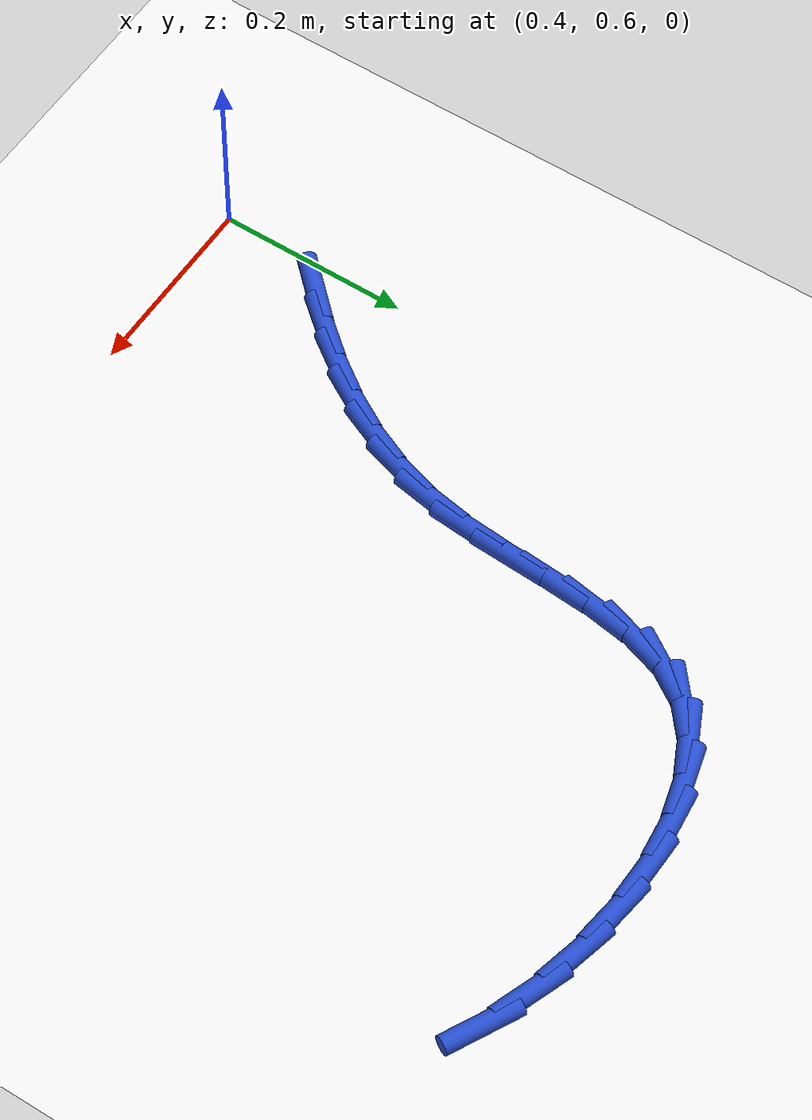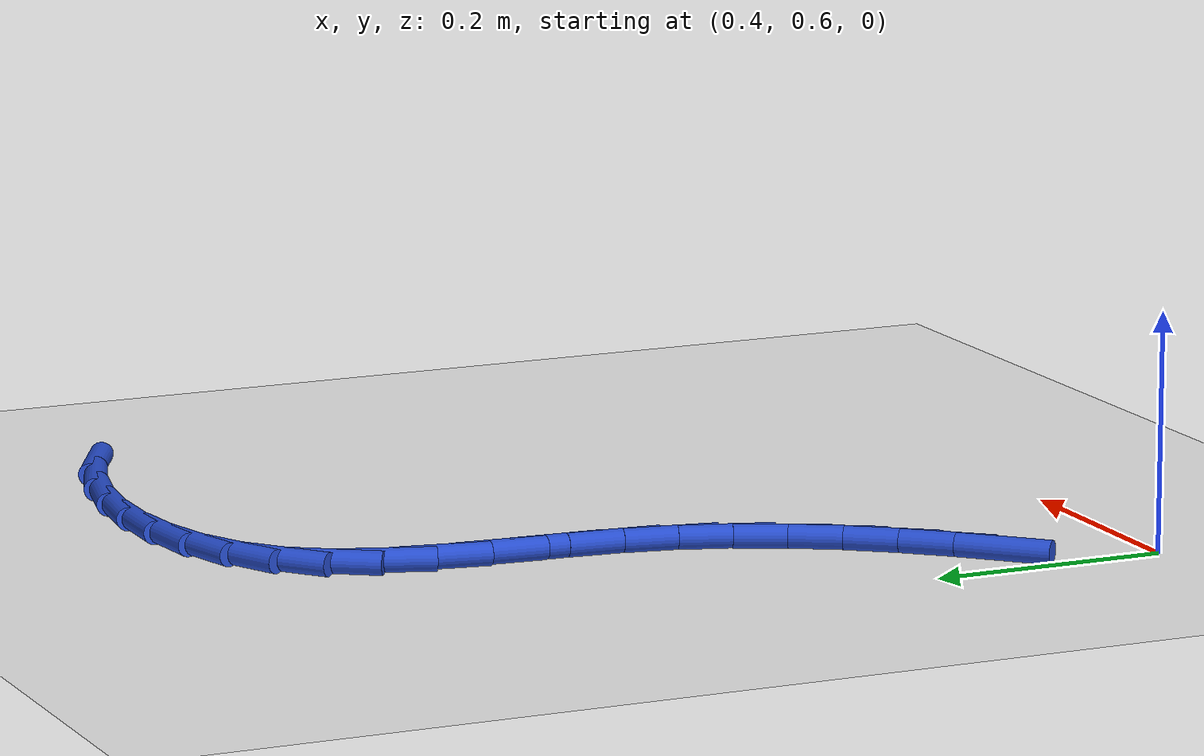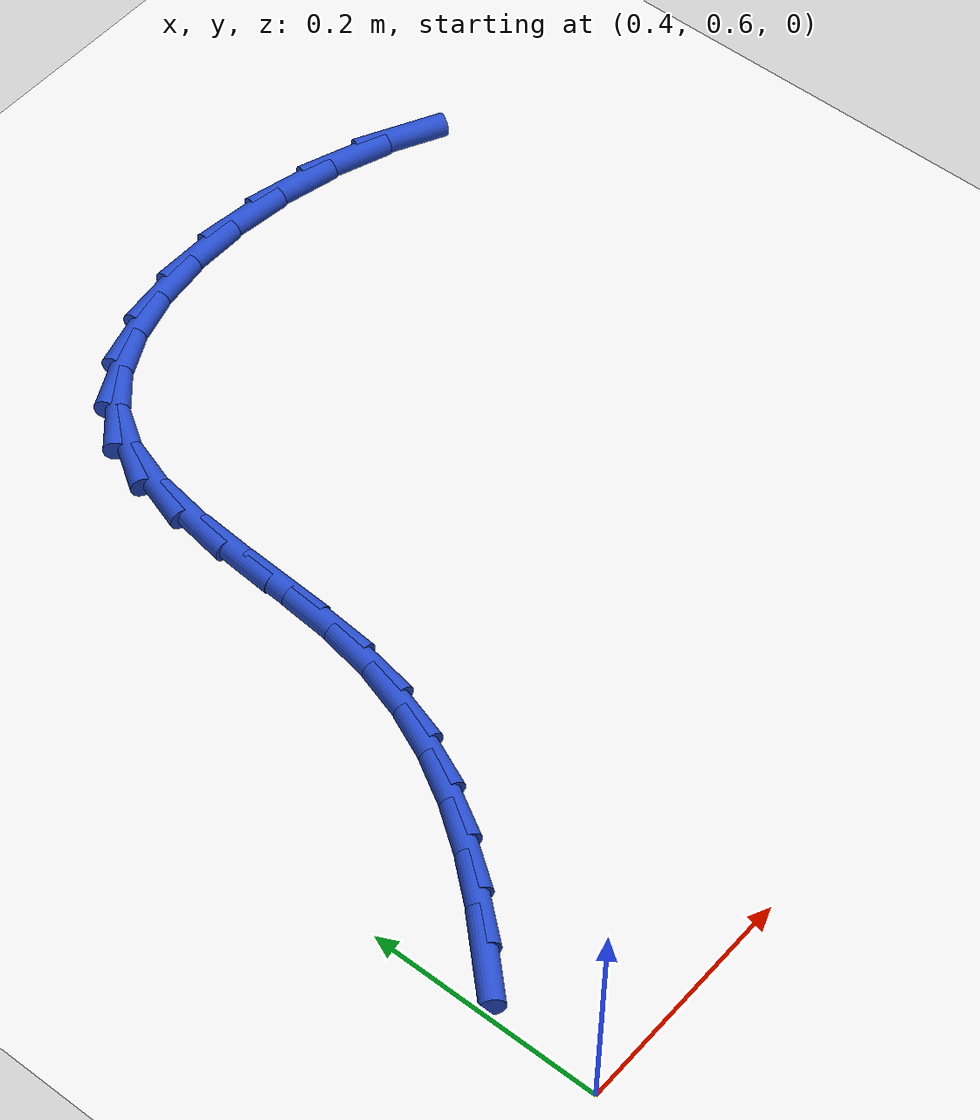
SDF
<sdf version="1.6">
 <world name="default">
  <model name="ground_plane">
   <static>1</static>
   <link name="link">
    <collision name="collision">
     <geometry><plane><normal>0 0 1</normal><size>100 100</size></plane></geometry>
     <surface><friction><ode><mu>100</mu><mu2>50</mu2></ode></friction></surface>
    </collision>
    <visual name="visual">
     <cast_shadows>0</cast_shadows>
     <geometry><plane><normal>0 0 1</normal><size>100 100</size></plane></geometry>
     <material>
      <script><uri>file://media/materials/scripts/gazebo.material</uri><name>Gazebo/WhiteGlow</name></script>
     </material>
    </visual>
   </link>
  </model>
  <model name="line">
   <link name="link_19">
    <pose>0.4315770969451005 0.7240481281600207 0.01 0 1.57 0.80685312022609</pose>
    <collision name="collision">
     <geometry><cylinder><radius>0.01</radius><length>0.08</length></cylinder></geometry>
    </collision>
    <visual name="visual">
     <material>
      <script><name>Gazebo/Blue</name><uri>file://media/materials/scripts/gazebo.material</uri></script>
     </material>
     <geometry><cylinder><radius>0.01</radius><length>0.08</length></cylinder></geometry>
    </visual>
   </link>
   <link name="link_20">
    <pose>0.46383347289678517 0.7577191915506433 0.01 0 1.57 0.869687519558874</pose>
    <collision name="collision">
     <geometry><cylinder><radius>0.01</radius><length>0.08</length></cylinder></geometry>
    </collision>
    <visual name="visual">
     <material>
      <script><name>Gazebo/Blue</name><uri>file://media/materials/scripts/gazebo.material</uri></script>
     </material>
     <geometry><cylinder><radius>0.01</radius><length>0.08</length></cylinder></geometry>
    </visual>
   </link>
   <link name="link_21">
    <pose>0.4934716887320097 0.7928278403098753 0.01 0 1.57 0.9483012114583834</pose>
    <collision name="collision">
     <geometry><cylinder><radius>0.01</radius><length>0.08</length></cylinder></geometry>
    </collision>
    <visual name="visual">
     <material>
      <script><name>Gazebo/Blue</name><uri>file://media/materials/scripts/gazebo.material</uri></script>
     </material>
     <geometry><cylinder><radius>0.01</radius><length>0.08</length></cylinder></geometry>
    </visual>
   </link>
   <link name="link_22">
    <pose>0.5199212839885567 0.8296820122524855 0.01 0 1.57 1.0428293696407007</pose>
    <collision name="collision">
     <geometry><cylinder><radius>0.01</radius><length>0.08</length></cylinder></geometry>
    </collision>
    <visual name="visual">
     <material>
      <script><name>Gazebo/Blue</name><uri>file://media/materials/scripts/gazebo.material</uri></script>
     </material>
     <geometry><cylinder><radius>0.01</radius><length>0.08</length></cylinder></geometry>
    </visual>
   </link>
   <link name="link_23">
    <pose>0.5426117982042098 0.868589645193244 0.01 0 1.57 1.1521839529303963</pose>
    <collision name="collision">
     <geometry><cylinder><radius>0.01</radius><length>0.08</length></cylinder></geometry>
    </collision>
    <visual name="visual">
     <material>
      <script><name>Gazebo/Blue</name><uri>file://media/materials/scripts/gazebo.material</uri></script>
     </material>
     <geometry><cylinder><radius>0.01</radius><length>0.08</length></cylinder></geometry>
    </visual>
   </link>
   <link name="link_24">
    <pose>0.5609727709167517 0.9098586769469199 0.01 0 1.57 1.2735146775960053</pose>
    <collision name="collision">
     <geometry><cylinder><radius>0.01</radius><length>0.08</length></cylinder></geometry>
    </collision>
    <visual name="visual">
     <material>
      <script><name>Gazebo/Blue</name><uri>file://media/materials/scripts/gazebo.material</uri></script>
     </material>
     <geometry><cylinder><radius>0.01</radius><length>0.08</length></cylinder></geometry>
    </visual>
   </link>
   <link name="link_25">
    <pose>0.5744337416639655 0.9537970453282822 0.01 0 1.57 1.399123777871416</pose>
    <collision name="collision">
     <geometry><cylinder><radius>0.01</radius><length>0.08</length></cylinder></geometry>
    </collision>
    <visual name="visual">
     <material>
      <script><name>Gazebo/Blue</name><uri>file://media/materials/scripts/gazebo.material</uri></script>
     </material>
     <geometry><cylinder><radius>0.01</radius><length>0.08</length></cylinder></geometry>
    </visual>
   </link>
   <link name="link_26">
    <pose>0.5825535647322827 1.0006297990888597 0.01 0 1.57 1.4876768465374621</pose>
    <collision name="collision">
     <geometry><cylinder><radius>0.01</radius><length>0.08</length></cylinder></geometry>
    </collision>
    <visual name="visual">
     <material>
      <script><name>Gazebo/Blue</name><uri>file://media/materials/scripts/gazebo.material</uri></script>
     </material>
     <geometry><cylinder><radius>0.01</radius><length>0.08</length></cylinder></geometry>
    </visual>
   </link>
   <link name="link_27">
    <pose>0.5866226834535703 1.0494720610405956 0.01 0 1.57 1.5190893224431121</pose>
    <collision name="collision">
     <geometry><cylinder><radius>0.01</radius><length>0.08</length></cylinder></geometry>
    </collision>
    <visual name="visual">
     <material>
      <script><name>Gazebo/Blue</name><uri>file://media/materials/scripts/gazebo.material</uri></script>
     </material>
     <geometry><cylinder><radius>0.01</radius><length>0.08</length></cylinder></geometry>
    </visual>
   </link>
   <link name="link_28">
    <pose>0.5891676222018837 1.0986466422077348 0.01 0 1.57 1.4961859262225696</pose>
    <collision name="collision">
     <geometry><cylinder><radius>0.01</radius><length>0.08</length></cylinder></geometry>
    </collision>
    <visual name="visual">
     <material>
      <script><name>Gazebo/Blue</name><uri>file://media/materials/scripts/gazebo.material</uri></script>
     </material>
     <geometry><cylinder><radius>0.01</radius><length>0.08</length></cylinder></geometry>
    </visual>
   </link>
   <link name="link_29">
    <pose>0.5927415748627202 1.1464592588063602 0.01 0 1.57 1.412246910299355</pose>
    <collision name="collision">
     <geometry><cylinder><radius>0.01</radius><length>0.08</length></cylinder></geometry>
    </collision>
    <visual name="visual">
     <material>
      <script><name>Gazebo/Blue</name><uri>file://media/materials/scripts/gazebo.material</uri></script>
     </material>
     <geometry><cylinder><radius>0.01</radius><length>0.08</length></cylinder></geometry>
    </visual>
   </link>
   <link name="link_30">
    <pose>0.5998977353215759 1.1912156270525531 0.01 0 1.57 1.2500295737251466</pose>
    <collision name="collision">
     <geometry><cylinder><radius>0.01</radius><length>0.08</length></cylinder></geometry>
    </collision>
    <visual name="visual">
     <material>
      <script><name>Gazebo/Blue</name><uri>file://media/materials/scripts/gazebo.material</uri></script>
     </material>
     <geometry><cylinder><radius>0.01</radius><length>0.08</length></cylinder></geometry>
    </visual>
   </link>
   <link name="link_31">
    <pose>0.613189297463948 1.2312214631623983 0.01 0 1.57 0.9923208631483486</pose>
    <collision name="collision">
     <geometry><cylinder><radius>0.01</radius><length>0.08</length></cylinder></geometry>
    </collision>
    <visual name="visual">
     <material>
      <script><name>Gazebo/Blue</name><uri>file://media/materials/scripts/gazebo.material</uri></script>
     </material>
     <geometry><cylinder><radius>0.01</radius><length>0.08</length></cylinder></geometry>
    </visual>
   </link>
   <link name="link_32">
    <pose>0.6351193274664706 1.2648053977375362 0.01 0 1.57 0.6994603263338488</pose>
    <collision name="collision">
     <geometry><cylinder><radius>0.01</radius><length>0.08</length></cylinder></geometry>
    </collision>
    <visual name="visual">
     <material>
      <script><name>Gazebo/Blue</name><uri>file://media/materials/scripts/gazebo.material</uri></script>
     </material>
     <geometry><cylinder><radius>0.01</radius><length>0.08</length></cylinder></geometry>
    </visual>
   </link>
   <link name="link_33">
    <pose>0.6663929255618745 1.2911179478330757 0.01 0 1.57 0.45719662307322917</pose>
    <collision name="collision">
     <geometry><cylinder><radius>0.01</radius><length>0.08</length></cylinder></geometry>
    </collision>
    <visual name="visual">
     <material>
      <script><name>Gazebo/Blue</name><uri>file://media/materials/scripts/gazebo.material</uri></script>
     </material>
     <geometry><cylinder><radius>0.01</radius><length>0.08</length></cylinder></geometry>
    </visual>
   </link>
   <link name="link_34">
    <pose>0.7054632210765232 1.3103390517719913 0.01 0 1.57 0.26735341154939035</pose>
    <collision name="collision">
     <geometry><cylinder><radius>0.01</radius><length>0.08</length></cylinder></geometry>
    </collision>
    <visual name="visual">
     <material>
      <script><name>Gazebo/Blue</name><uri>file://media/materials/scripts/gazebo.material</uri></script>
     </material>
     <geometry><cylinder><radius>0.01</radius><length>0.08</length></cylinder></geometry>
    </visual>
   </link>
   <link name="link_35">
    <pose>0.7506409692842806 1.3227137299248182 0.01 0 1.57 0.11588456945361524</pose>
    <collision name="collision">
     <geometry><cylinder><radius>0.01</radius><length>0.08</length></cylinder></geometry>
    </collision>
    <visual name="visual">
     <material>
      <script><name>Gazebo/Blue</name><uri>file://media/materials/scripts/gazebo.material</uri></script>
     </material>
     <geometry><cylinder><radius>0.01</radius><length>0.08</length></cylinder></geometry>
    </visual>
   </link>
   <link name="link_36">
    <pose>0.8002369254590119 1.3284870026620923 0.01 0 1.57 -0.011143603795526572</pose>
    <collision name="collision">
     <geometry><cylinder><radius>0.01</radius><length>0.08</length></cylinder></geometry>
    </collision>
    <visual name="visual">
     <material>
      <script><name>Gazebo/Blue</name><uri>file://media/materials/scripts/gazebo.material</uri></script>
     </material>
     <geometry><cylinder><radius>0.01</radius><length>0.08</length></cylinder></geometry>
    </visual>
   </link>
   <link name="link_37">
    <pose>0.8525618448745811 1.3279038903543487 0.01 0 1.57 -0.12479589124735478</pose>
    <collision name="collision">
     <geometry><cylinder><radius>0.01</radius><length>0.08</length></cylinder></geometry>
    </collision>
    <visual name="visual">
     <material>
      <script><name>Gazebo/Blue</name><uri>file://media/materials/scripts/gazebo.material</uri></script>
     </material>
     <geometry><cylinder><radius>0.01</radius><length>0.08</length></cylinder></geometry>
    </visual>
   </link>
   <link name="link_38">
    <pose>0.9059264828048526 1.3212094133721228 0.01 0 1.57 -0.23391559043876023</pose>
    <collision name="collision">
     <geometry><cylinder><radius>0.01</radius><length>0.08</length></cylinder></geometry>
    </collision>
    <visual name="visual">
     <material>
      <script><name>Gazebo/Blue</name><uri>file://media/materials/scripts/gazebo.material</uri></script>
     </material>
     <geometry><cylinder><radius>0.01</radius><length>0.08</length></cylinder></geometry>
    </visual>
   </link>
   <link name="link_39">
    <pose>0.958641594523691 1.3086485920859499 0.01 0 1.57 -0.3463753444541136</pose>
    <collision name="collision">
     <geometry><cylinder><radius>0.01</radius><length>0.08</length></cylinder></geometry>
    </collision>
    <visual name="visual">
     <material>
      <script><name>Gazebo/Blue</name><uri>file://media/materials/scripts/gazebo.material</uri></script>
     </material>
     <geometry><cylinder><radius>0.01</radius><length>0.08</length></cylinder></geometry>
    </visual>
   </link>
   <link name="link_40">
    <pose>1.0090179353049606 1.2904664468663654 0.01 0 1.57 -0.47014789101066307</pose>
    <collision name="collision">
     <geometry><cylinder><radius>0.01</radius><length>0.08</length></cylinder></geometry>
    </collision>
    <visual name="visual">
     <material>
      <script><name>Gazebo/Blue</name><uri>file://media/materials/scripts/gazebo.material</uri></script>
     </material>
     <geometry><cylinder><radius>0.01</radius><length>0.08</length></cylinder></geometry>
    </visual>
   </link>
  </model>
 </world>
</sdf>
